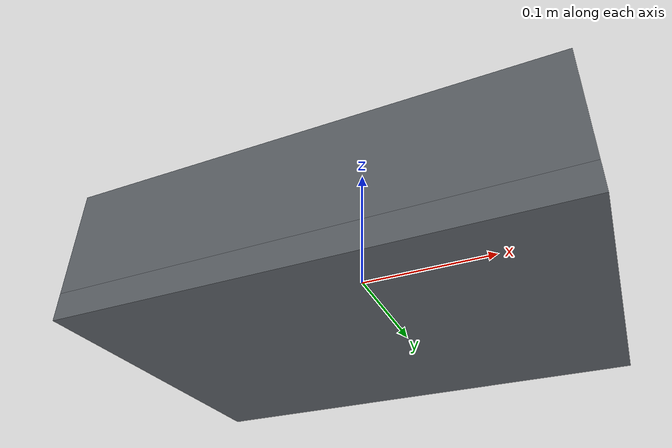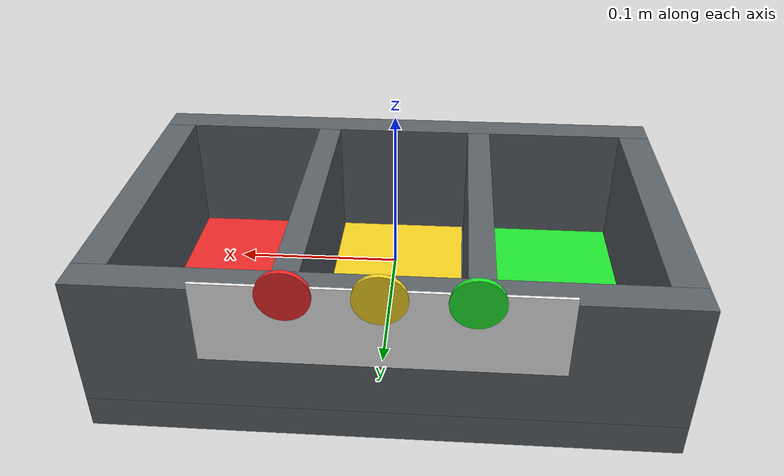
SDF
<?xml version="1.0"?>
<sdf version="1.6">
  <model name="aging_rack">
    <static>true</static>
    <link name="link">
      <!-- 空心三槽架:薄底板 + 四周墙 + 两块隔板。 -->
      <collision name="collision_bottom">
        <pose>0 0 -0.04 0 0 0</pose>
        <geometry><box><size>0.34 0.22 0.02</size></box></geometry>
        <surface><friction><ode><mu>1.0</mu><mu2>1.0</mu2></ode></friction></surface>
      </collision>
      <collision name="collision_wall_front">
        <pose>0 0.10 0.01 0 0 0</pose>
        <geometry><box><size>0.34 0.02 0.08</size></box></geometry>
        <surface><friction><ode><mu>1.0</mu><mu2>1.0</mu2></ode></friction></surface>
      </collision>
      <collision name="collision_wall_back">
        <pose>0 -0.10 0.01 0 0 0</pose>
        <geometry><box><size>0.34 0.02 0.08</size></box></geometry>
        <surface><friction><ode><mu>1.0</mu><mu2>1.0</mu2></ode></friction></surface>
      </collision>
      <collision name="collision_wall_left">
        <pose>-0.16 0 0.01 0 0 0</pose>
        <geometry><box><size>0.02 0.18 0.08</size></box></geometry>
        <surface><friction><ode><mu>1.0</mu><mu2>1.0</mu2></ode></friction></surface>
      </collision>
      <collision name="collision_wall_right">
        <pose>0.16 0 0.01 0 0 0</pose>
        <geometry><box><size>0.02 0.18 0.08</size></box></geometry>
        <surface><friction><ode><mu>1.0</mu><mu2>1.0</mu2></ode></friction></surface>
      </collision>
      <collision name="collision_divider_left">
        <pose>-0.0525 0 0.01 0 0 0</pose>
        <geometry><box><size>0.015 0.18 0.08</size></box></geometry>
        <surface><friction><ode><mu>1.0</mu><mu2>1.0</mu2></ode></friction></surface>
      </collision>
      <collision name="collision_divider_right">
        <pose>0.0525 0 0.01 0 0 0</pose>
        <geometry><box><size>0.015 0.18 0.08</size></box></geometry>
        <surface><friction><ode><mu>1.0</mu><mu2>1.0</mu2></ode></friction></surface>
      </collision>
      <visual name="base_bottom">
        <pose>0 0 -0.04 0 0 0</pose>
        <geometry><box><size>0.34 0.22 0.02</size></box></geometry>
        <material><ambient>0.20 0.20 0.22 1</ambient><diffuse>0.36 0.38 0.40 1</diffuse></material>
      </visual>
      <visual name="wall_front">
        <pose>0 0.10 0.01 0 0 0</pose>
        <geometry><box><size>0.34 0.02 0.08</size></box></geometry>
        <material><ambient>0.20 0.20 0.22 1</ambient><diffuse>0.36 0.38 0.40 1</diffuse></material>
      </visual>
      <visual name="wall_back">
        <pose>0 -0.10 0.01 0 0 0</pose>
        <geometry><box><size>0.34 0.02 0.08</size></box></geometry>
        <material><ambient>0.20 0.20 0.22 1</ambient><diffuse>0.36 0.38 0.40 1</diffuse></material>
      </visual>
      <visual name="wall_left">
        <pose>-0.16 0 0.01 0 0 0</pose>
        <geometry><box><size>0.02 0.18 0.08</size></box></geometry>
        <material><ambient>0.20 0.20 0.22 1</ambient><diffuse>0.36 0.38 0.40 1</diffuse></material>
      </visual>
      <visual name="wall_right">
        <pose>0.16 0 0.01 0 0 0</pose>
        <geometry><box><size>0.02 0.18 0.08</size></box></geometry>
        <material><ambient>0.20 0.20 0.22 1</ambient><diffuse>0.36 0.38 0.40 1</diffuse></material>
      </visual>
      <visual name="divider_left">
        <pose>-0.0525 0 0.01 0 0 0</pose>
        <geometry><box><size>0.015 0.18 0.08</size></box></geometry>
        <material><ambient>0.20 0.20 0.22 1</ambient><diffuse>0.36 0.38 0.40 1</diffuse></material>
      </visual>
      <visual name="divider_right">
        <pose>0.0525 0 0.01 0 0 0</pose>
        <geometry><box><size>0.015 0.18 0.08</size></box></geometry>
        <material><ambient>0.20 0.20 0.22 1</ambient><diffuse>0.36 0.38 0.40 1</diffuse></material>
      </visual>
      <visual name="slot_left">
        <pose>-0.105 0 -0.028 0 0 0</pose>
        <geometry><box><size>0.088 0.176 0.004</size></box></geometry>
        <material><ambient>0.08 0.70 0.12 1</ambient><diffuse>0.12 0.90 0.18 1</diffuse></material>
      </visual>
      <visual name="slot_mid">
        <pose>0 0 -0.028 0 0 0</pose>
        <geometry><box><size>0.088 0.176 0.004</size></box></geometry>
        <material><ambient>0.70 0.60 0.08 1</ambient><diffuse>0.95 0.82 0.12 1</diffuse></material>
      </visual>
      <visual name="slot_right">
        <pose>0.105 0 -0.028 0 0 0</pose>
        <geometry><box><size>0.088 0.176 0.004</size></box></geometry>
        <material><ambient>0.74 0.10 0.10 1</ambient><diffuse>0.92 0.16 0.16 1</diffuse></material>
      </visual>
      <visual name="status_panel">
        <pose>0 0.111 0.03 1.57079 0 0</pose>
        <geometry><box><size>0.20 0.05 0.002</size></box></geometry>
        <material><ambient>0.88 0.88 0.88 1</ambient><diffuse>0.92 0.92 0.92 1</diffuse></material>
      </visual>
      <visual name="status_green">
        <pose>-0.05 0.112 0.05 1.57079 0 0</pose>
        <geometry><cylinder><radius>0.015</radius><length>0.003</length></cylinder></geometry>
        <material><ambient>0.08 0.70 0.12 1</ambient><diffuse>0.12 0.90 0.18 1</diffuse></material>
      </visual>
      <visual name="status_yellow">
        <pose>0.0 0.112 0.05 1.57079 0 0</pose>
        <geometry><cylinder><radius>0.015</radius><length>0.003</length></cylinder></geometry>
        <material><ambient>0.70 0.60 0.08 1</ambient><diffuse>0.95 0.82 0.12 1</diffuse></material>
      </visual>
      <visual name="status_red">
        <pose>0.05 0.112 0.05 1.57079 0 0</pose>
        <geometry><cylinder><radius>0.015</radius><length>0.003</length></cylinder></geometry>
        <material><ambient>0.74 0.10 0.10 1</ambient><diffuse>0.92 0.16 0.16 1</diffuse></material>
      </visual>
    </link>
  </model>
</sdf>
